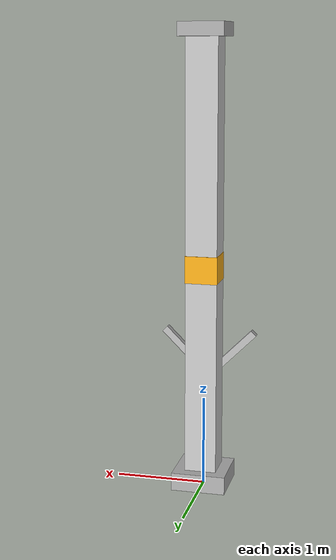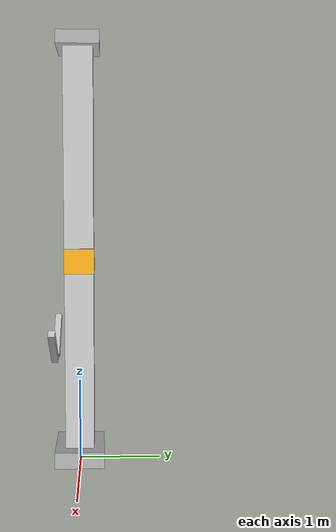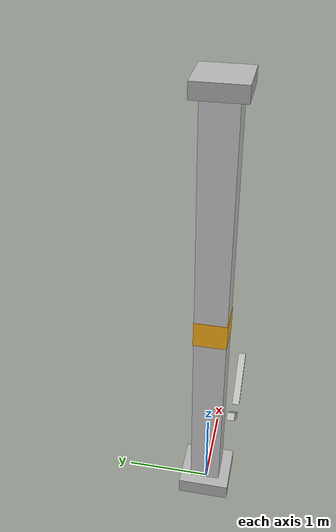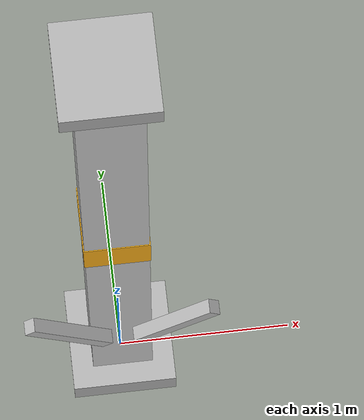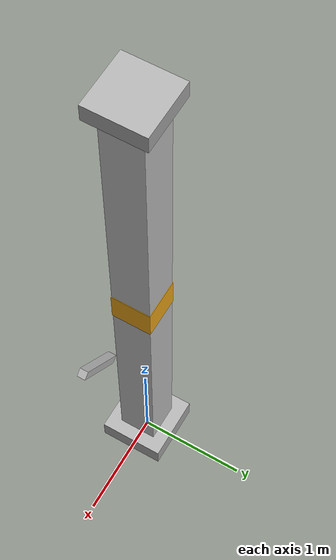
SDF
<?xml version="1.0"?>

<sdf version="1.10">

  <model name="busbar_support">

    <static>true</static>

    <link name="link">

      <!-- MAIN STEEL COLUMN -->
      <visual name="column_main">
        <pose>0 0 2.5 0 0 0</pose>
        <geometry>
          <box>
            <size>0.35 0.35 5</size>
          </box>
        </geometry>
        <material>
          <ambient>0.7 0.7 0.7 1</ambient>
          <diffuse>0.8 0.8 0.8 1</diffuse>
          <specular>0.3 0.3 0.3 1</specular>
        </material>
      </visual>

      <!-- BASE PLATE -->
      <visual name="base_plate">
        <pose>0 0 0.1 0 0 0</pose>
        <geometry>
          <box>
            <size>0.6 0.6 0.2</size>
          </box>
        </geometry>
        <material>
          <ambient>0.6 0.6 0.6 1</ambient>
          <diffuse>0.7 0.7 0.7 1</diffuse>
        </material>
      </visual>

      <!-- TOP MOUNTING PLATE -->
      <visual name="top_plate">
        <pose>0 0 5.05 0 0 0</pose>
        <geometry>
          <box>
            <size>0.5 0.5 0.15</size>
          </box>
        </geometry>
        <material>
          <ambient>0.6 0.6 0.6 1</ambient>
          <diffuse>0.7 0.7 0.7 1</diffuse>
        </material>
      </visual>

      <!-- BRACING MEMBERS -->
      <visual name="bracing_1">
        <pose>-0.3 -0.3 1.5 0 0.785 0</pose>
        <geometry>
          <box>
            <size>0.6 0.08 0.08</size>
          </box>
        </geometry>
        <material>
          <ambient>0.65 0.65 0.65 1</ambient>
          <diffuse>0.75 0.75 0.75 1</diffuse>
        </material>
      </visual>

      <visual name="bracing_2">
        <pose>0.3 -0.3 1.5 0 -0.785 0</pose>
        <geometry>
          <box>
            <size>0.6 0.08 0.08</size>
          </box>
        </geometry>
        <material>
          <ambient>0.65 0.65 0.65 1</ambient>
          <diffuse>0.75 0.75 0.75 1</diffuse>
        </material>
      </visual>

      <!-- PAINTED IDENTIFICATION BAND -->
      <visual name="id_band">
        <pose>0 0 2.5 0 0 0</pose>
        <geometry>
          <box>
            <size>0.36 0.36 0.3</size>
          </box>
        </geometry>
        <material>
          <ambient>1 0.6 0 1</ambient>
          <diffuse>1 0.7 0.1 1</diffuse>
        </material>
      </visual>

      <!-- COLLISION -->
      <collision name="collision">
        <pose>0 0 2.5 0 0 0</pose>
        <geometry>
          <box>
            <size>0.35 0.35 5</size>
          </box>
        </geometry>
      </collision>

    </link>

  </model>

</sdf>
